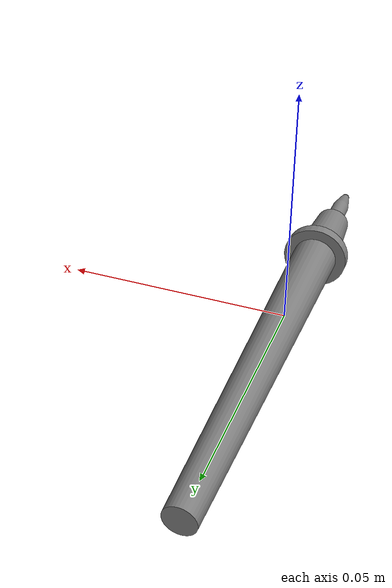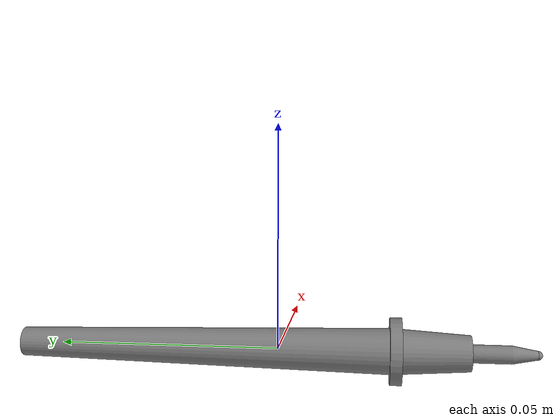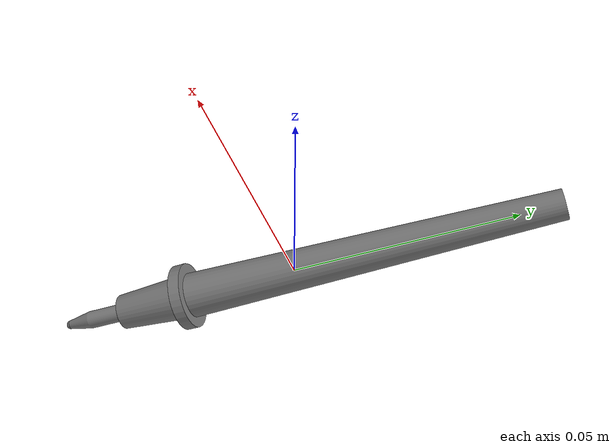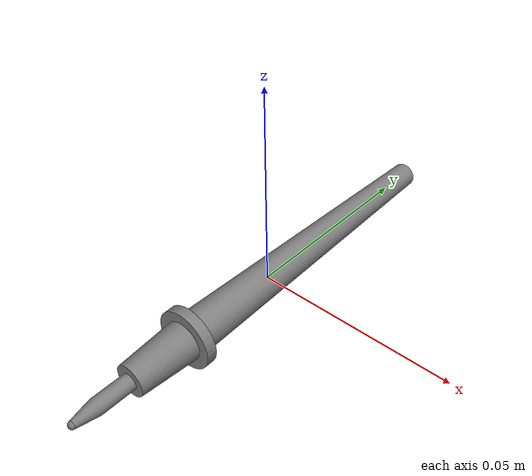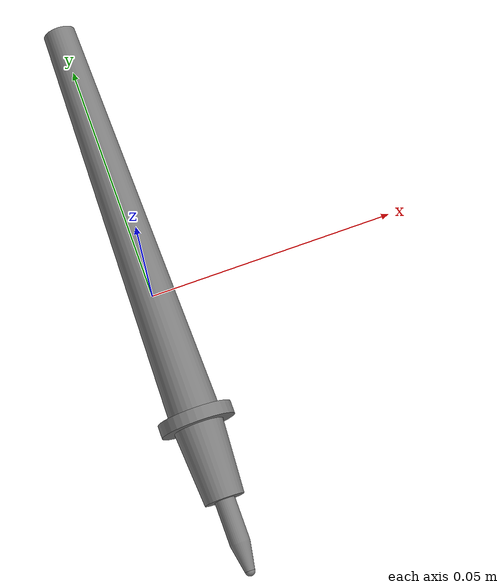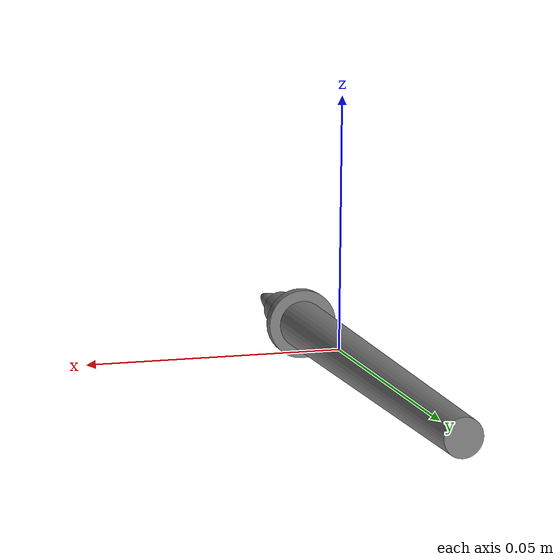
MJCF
<mujoco model="task_board_tool">
    <compiler angle="radian" meshdir="../meshes/stl" autolimits="true" inertiafromgeom="false"/>
    <asset>
        <mesh name="task_board_tool_1" file="task_board_tool_1.stl" />
        <mesh name="task_board_tool_2" file="task_board_tool_2.stl" />
        <mesh name="task_board_tool_3" file="task_board_tool_3.stl" />
        <mesh name="task_board_tool_4" file="task_board_tool_4.stl" />
    </asset>

    <worldbody>
        <body name="task_board_tool">
            <freejoint/>
            <inertial mass="0.006231526378542185" pos="-2.27348695425178e-11 0.0001277880510315299 -3.0341962276025924e-09" quat="-0.4846147894859314 -0.5149257183074951 0.5149257183074951 0.4846147894859314" diaginertia="6.648315320489928e-08 5.043107648816658e-06 5.043107648816658e-06"/>
            <geom type="mesh" mesh="task_board_tool_1" friction="0.5" solimp="0.95 0.95 0.005" solref="0.03 1" condim="6"/>
            <geom type="mesh" mesh="task_board_tool_2" friction="0.5" solimp="0.95 0.95 0.005" solref="0.03 1" condim="6"/>
            <geom type="mesh" mesh="task_board_tool_3" friction="0.5" solimp="0.95 0.95 0.005" solref="0.03 1" condim="6"/>
            <geom type="mesh" mesh="task_board_tool_4" friction="0.5" solimp="0.95 0.95 0.005" solref="0.03 1" condim="6"/>
            <geom type="sphere" pos="0 -0.056582 0" size="0.00099" friction="0.5" solimp="0.95 0.95 0.005" solref="0.03 1" condim="6"/>
        </body>
    </worldbody>
</mujoco>
